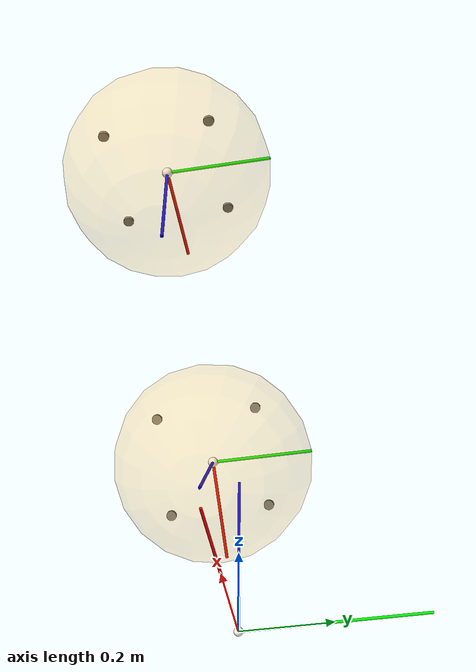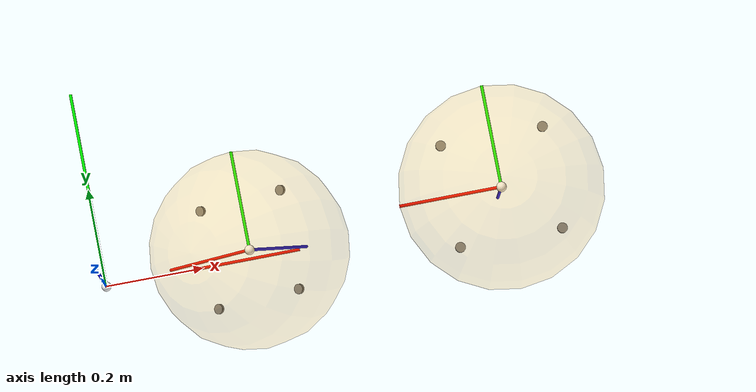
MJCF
<mujoco model="quadcopter">
  <option gravity="0 0 0" timestep="0.002"/>

  <asset>
    <texture type="skybox" builtin="flat" rgb1="1 1 1" rgb2="1 1 1" width="32" height="32"/>
    <texture type="2d" name="groundplane" builtin="checker" mark="edge" rgb1="0.2 0.3 0.4" rgb2="0.1 0.2 0.3" markrgb="0.8 0.8 0.8" width="300" height="300"/>
    <material name="groundplane" texture="groundplane" texuniform="true" texrepeat="5 5" reflectance="0.2"/>

    <texture name="prop_tex" type="2d" builtin="checker" width="64" height="64" rgb1="0.8 0.8 0.8" rgb2="0 0 0"/>
    <material name="prop_mat" texture="prop_tex" texrepeat="1 1" texuniform="true"/>
  </asset>

  <visual>
    <global offwidth="1920" offheight="1080"/>
    <headlight diffuse="0.6 0.6 0.6" ambient="0.3 0.3 0.3" specular="0 0 0"/>
    <rgba haze="1 1 1 1"/>
  </visual>

  <worldbody>
    <light pos="0 0 1.5" dir="0 0 -1" directional="true"/>

    <body name="world_frame" pos="0 0 0">
      <geom type="sphere" size="0.01" rgba="1 1 1 1" contype="0" conaffinity="0"/>
      <geom type="cylinder" fromto="0 0 0 0.4 0 0" size="0.003" rgba="1 0 0 1" contype="0" conaffinity="0"/>
      <geom type="cylinder" fromto="0 0 0 0 0.4 0" size="0.003" rgba="0 1 0 1" contype="0" conaffinity="0"/>
      <geom type="cylinder" fromto="0 0 0 0 0 0.4" size="0.003" rgba="0 0 1 1" contype="0" conaffinity="0"/>
    </body>

    <body name="base" pos="0.3 0 0.2" euler="0 145 0">
      <freejoint/>

      <geom name="chassis" type="box" size=".1 .05 .02" rgba="0.2 0.2 0.2 0.5" mass="0.25"/>

      <geom name="cage" type="sphere" mass="0" size="0.2" pos="0.0 0 0.0"  rgba="1 0.65 0 0.2"/>

      <site name="body_frame" pos="0 0 0"/>
      <geom type="sphere" size="0.01" rgba="1 1 1 1" contype="0" conaffinity="0" mass="0"/>
      <geom type="cylinder" fromto="0 0 0 0.2 0 0" size="0.003" rgba="1 0 0 1" contype="0" conaffinity="0" mass="0"/>
      <geom type="cylinder" fromto="0 0 0 0 0.2 0" size="0.003" rgba="0 1 0 1" contype="0" conaffinity="0" mass="0"/>
      <geom type="cylinder" fromto="0 0 0 0 0 0.2" size="0.003" rgba="0 0 1 1" contype="0" conaffinity="0" mass="0"/>

      <body name="rotor_rr" pos="-0.1 -0.1 0">
        <inertial pos="0 0 0" mass="0.05" diaginertia="5e-6 5e-6 9e-6"/>
        <geom type="cylinder" size=".05 .001" rgba="0.8 0.8 0.8 0.8" material="prop_mat"/>
        <site name="motor_rr" type="cylinder" size="0.01 0.003" pos="0 0 0"/>
      </body>

      <body name="rotor_fr" pos="0.1 -0.1 0">
        <inertial pos="0 0 0" mass="0.05" diaginertia="5e-6 5e-6 9e-6"/>
        <geom type="cylinder" size=".05 .001" rgba="0.8 0.8 0.8 0.8" material="prop_mat"/>
        <site name="motor_fr" type="cylinder" size="0.01 0.003" pos="0 0 0"/>
      </body>

      <body name="rotor_rl" pos="-0.1 0.1 0">
        <inertial pos="0 0 0" mass="0.05" diaginertia="5e-6 5e-6 9e-6"/>
        <geom type="cylinder" size=".05 .001" rgba="0.8 0.8 0.8 0.8" material="prop_mat"/>
        <site name="motor_rl" type="cylinder" size="0.01 0.003" pos="0 0 0"/>
      </body>

      <body name="rotor_fl" pos="0.1 0.1 0">
        <inertial pos="0 0 0" mass="0.05" diaginertia="5e-6 5e-6 9e-6"/>
        <geom type="cylinder" size=".05 .001" rgba="0.8 0.8 0.8 0.8" material="prop_mat"/>
        <site name="motor_fl" type="cylinder" size="0.01 0.003" pos="0 0 0"/>
      </body>

    </body>

    <body name="base_2" pos="0.8 0.0 0.5" euler="0 180 0">
      <freejoint/>

      <geom name="chassis_2" type="box" size=".1 .05 .02" rgba="0.2 0.2 0.2 0.5" mass="0.25"/>

      <geom name="cage_2" type="sphere" mass="0" size="0.2" pos="0.0 0 0.0" rgba="1 0.65 0 0.2"/>

      <site name="body_frame_2" pos="0 0 0"/>
      <geom type="sphere" size="0.01" rgba="1 1 1 1" contype="0" conaffinity="0" mass="0"/>
      <geom type="cylinder" fromto="0 0 0 0.2 0 0" size="0.003" rgba="1 0 0 1" contype="0" conaffinity="0" mass="0"/>
      <geom type="cylinder" fromto="0 0 0 0 0.2 0" size="0.003" rgba="0 1 0 1" contype="0" conaffinity="0" mass="0"/>
      <geom type="cylinder" fromto="0 0 0 0 0 0.2" size="0.003" rgba="0 0 1 1" contype="0" conaffinity="0" mass="0"/>

      <body name="rotor_rr_2" pos="-0.1 -0.1 0">
        <inertial pos="0 0 0" mass="0.05" diaginertia="5e-6 5e-6 9e-6"/>
        <geom type="cylinder" size=".05 .001" rgba="0.8 0.8 0.8 0.8" material="prop_mat"/>
        <site name="motor_rr_2" type="cylinder" size="0.01 0.003" pos="0 0 0"/>
      </body>

      <body name="rotor_fr_2" pos="0.1 -0.1 0">
        <inertial pos="0 0 0" mass="0.05" diaginertia="5e-6 5e-6 9e-6"/>
        <geom type="cylinder" size=".05 .001" rgba="0.8 0.8 0.8 0.8" material="prop_mat"/>
        <site name="motor_fr_2" type="cylinder" size="0.01 0.003" pos="0 0 0"/>
      </body>

      <body name="rotor_rl_2" pos="-0.1 0.1 0">
        <inertial pos="0 0 0" mass="0.05" diaginertia="5e-6 5e-6 9e-6"/>
        <geom type="cylinder" size=".05 .001" rgba="0.8 0.8 0.8 0.8" material="prop_mat"/>
        <site name="motor_rl_2" type="cylinder" size="0.01 0.003" pos="0 0 0"/>
      </body>

      <body name="rotor_fl_2" pos="0.1 0.1 0">
        <inertial pos="0 0 0" mass="0.05" diaginertia="5e-6 5e-6 9e-6"/>
        <geom type="cylinder" size=".05 .001" rgba="0.8 0.8 0.8 0.8" material="prop_mat"/>
        <site name="motor_fl_2" type="cylinder" size="0.01 0.003" pos="0 0 0"/>
      </body>

    </body>

  </worldbody>

  <actuator>
    <motor name="motor_rr" site="motor_rr" gear="0 0 1 0 0 0.02" ctrllimited="true" ctrlrange="-1000 1000"/>
    <motor name="motor_fr" site="motor_fr" gear="0 0 1 0 0 -0.02" ctrllimited="true" ctrlrange="-1000 1000"/>
    <motor name="motor_rl" site="motor_rl" gear="0 0 1 0 0 -0.02" ctrllimited="true" ctrlrange="-1000 1000"/>
    <motor name="motor_fl" site="motor_fl" gear="0 0 1 0 0 0.02" ctrllimited="true" ctrlrange="-1000 1000"/>
    <motor name="motor_rr_2_act" site="motor_rr_2" gear="0 0 1 0 0 0.02" ctrllimited="true" ctrlrange="-1000 1000"/>
    <motor name="motor_fr_2_act" site="motor_fr_2" gear="0 0 1 0 0 -0.02" ctrllimited="true" ctrlrange="-1000 1000"/>
    <motor name="motor_rl_2_act" site="motor_rl_2" gear="0 0 1 0 0 -0.02" ctrllimited="true" ctrlrange="-1000 1000"/>
    <motor name="motor_fl_2_act" site="motor_fl_2" gear="0 0 1 0 0 0.02" ctrllimited="true" ctrlrange="-1000 1000"/>
  </actuator>

  <sensor>
    <accelerometer name="accel" site="body_frame" noise="0.005" cutoff="100"/>
    <gyro name="gyro" site="body_frame" noise="0.005" cutoff="100"/>
    <framequat name="quat" objtype="site" objname="body_frame"/>
  </sensor>

</mujoco>
